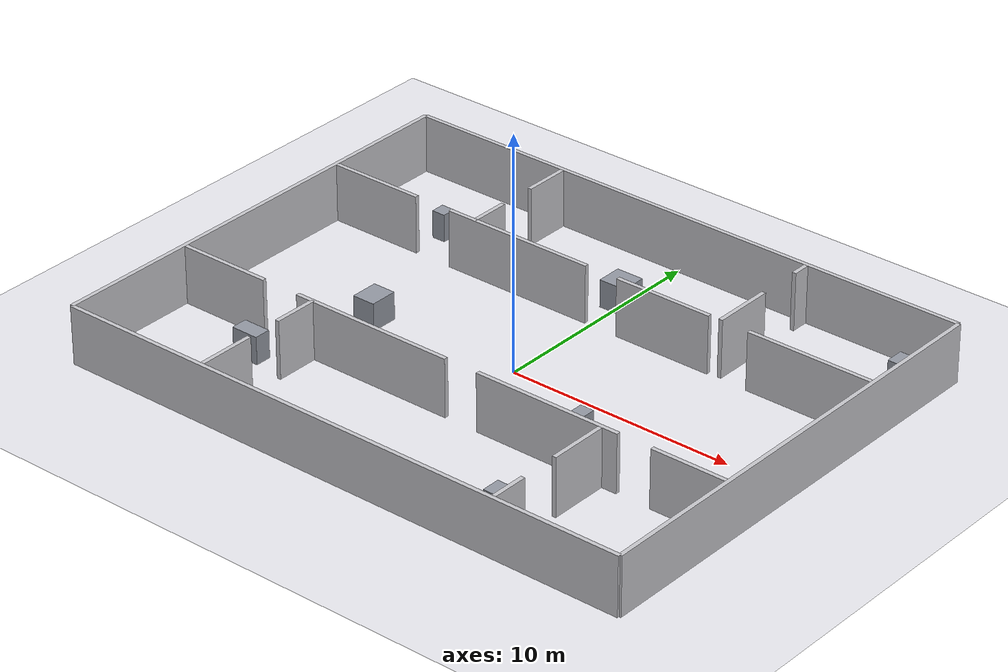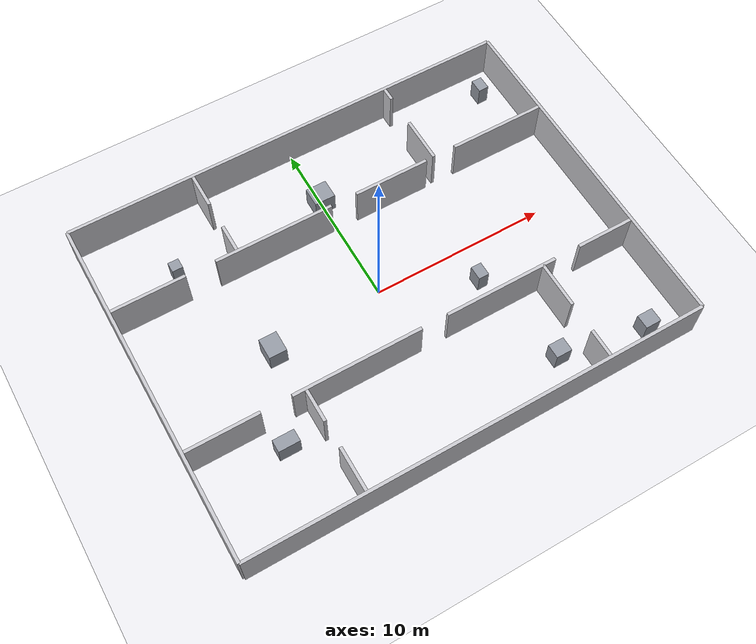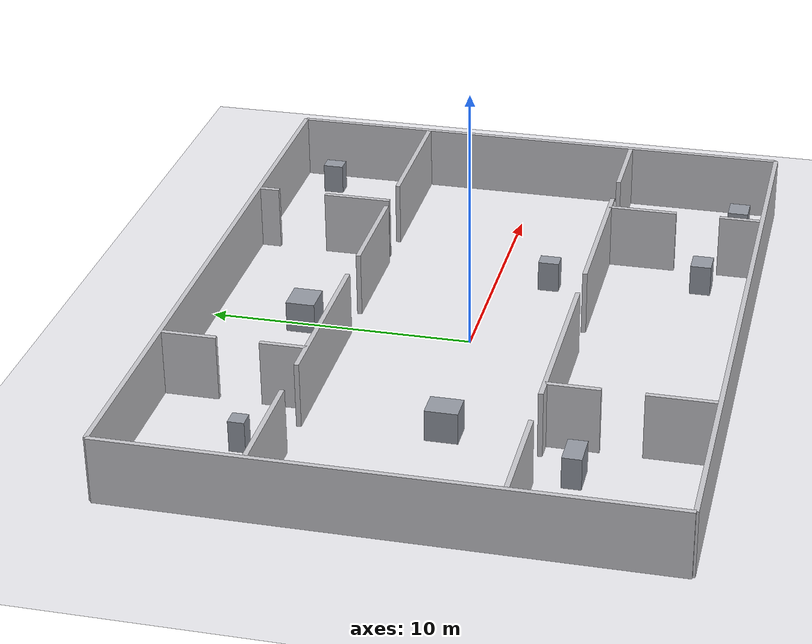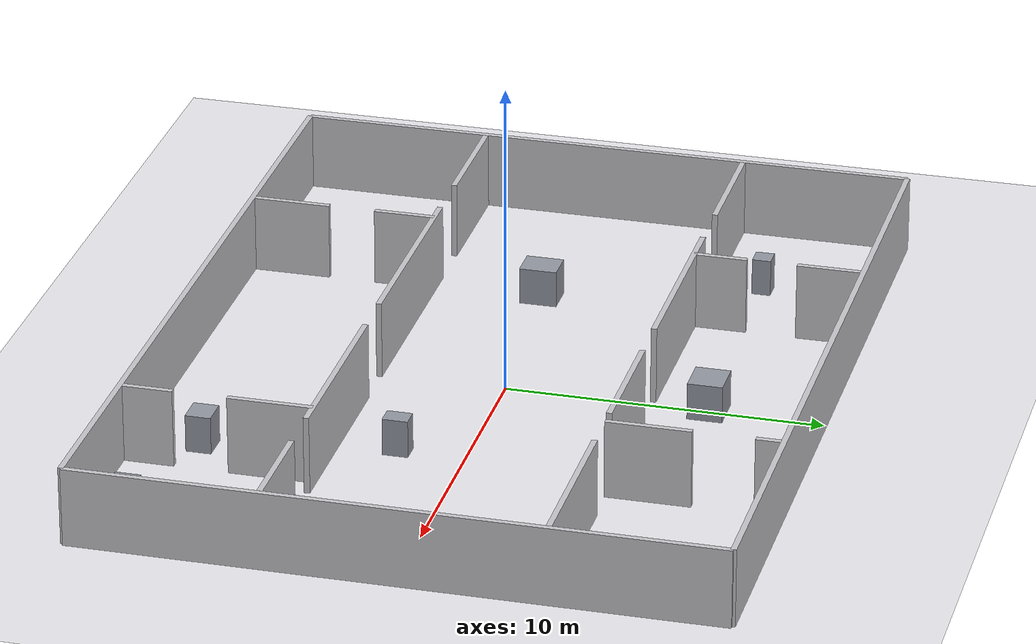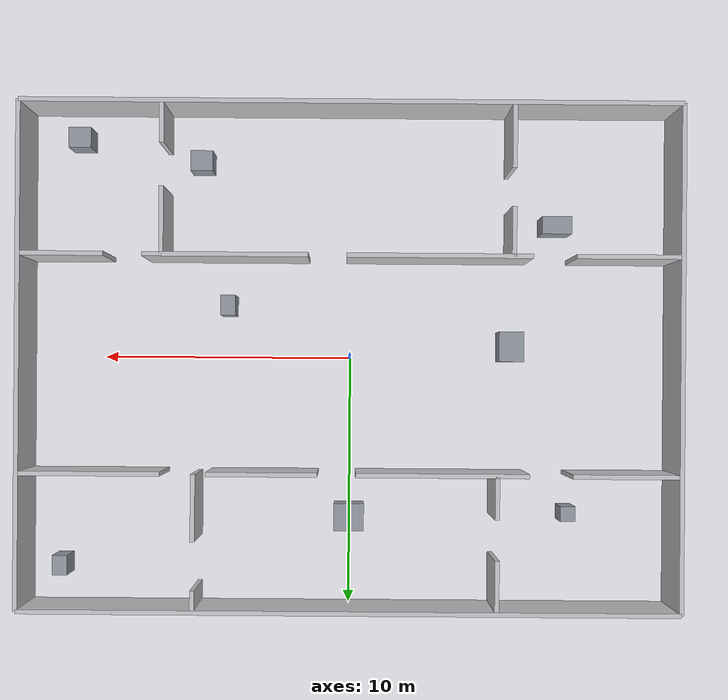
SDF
<?xml version="1.0"?>
<sdf version="1.9"><world name="new_room_world">
<plugin filename="gz-sim-physics-system" name="gz::sim::systems::Physics"/><plugin filename="gz-sim-user-commands-system" name="gz::sim::systems::UserCommands"/><plugin filename="gz-sim-scene-broadcaster-system" name="gz::sim::systems::SceneBroadcaster"/><plugin filename="gz-sim-sensors-system" name="gz::sim::systems::Sensors"><render_engine>ogre2</render_engine></plugin><plugin filename="gz-sim-imu-system" name="gz::sim::systems::Imu"/>
<physics name="new_room_realtime" type="ignored"><max_step_size>0.001</max_step_size><real_time_factor>1</real_time_factor></physics><gravity>0 0 -9.8</gravity><scene><ambient>0.85 0.85 0.87 1</ambient><background>0.68 0.68 0.71 1</background><shadows>false</shadows></scene><light name="sun" type="directional"><cast_shadows>false</cast_shadows><pose>0 0 10 0 0 0</pose><diffuse>0.95 0.95 0.95 1</diffuse><direction>-0.3 0.2 -1</direction></light>
<model name="new_room_ground"><static>true</static><link name="ground_link"><collision name="ground_collision"><geometry><plane><normal>0 0 1</normal><size>40 32</size></plane></geometry></collision><visual name="ground_visual"><geometry><plane><normal>0 0 1</normal><size>40 32</size></plane></geometry><material><ambient>0.92 0.92 0.94 1</ambient><diffuse>0.92 0.92 0.94 1</diffuse></material></visual></link></model>
<model name="mini_hospital_structure"><static>true</static><link name="structure">
<collision name="mx048_c000"><pose>0 10 1.25 0 0 0</pose><geometry><box><size>26 0.18 2.5</size></box></geometry></collision><visual name="mx048_v000"><pose>0 10 1.25 0 0 0</pose><geometry><box><size>26 0.18 2.5</size></box></geometry><material><ambient>0.78 0.78 0.80 1</ambient><diffuse>0.78 0.78 0.80 1</diffuse></material></visual>
<collision name="mx048_c001"><pose>0 -10 1.25 0 0 0</pose><geometry><box><size>26 0.18 2.5</size></box></geometry></collision><visual name="mx048_v001"><pose>0 -10 1.25 0 0 0</pose><geometry><box><size>26 0.18 2.5</size></box></geometry><material><ambient>0.78 0.78 0.80 1</ambient><diffuse>0.78 0.78 0.80 1</diffuse></material></visual>
<collision name="mx048_c002"><pose>-13 0 1.25 0 0 0</pose><geometry><box><size>0.18 20 2.5</size></box></geometry></collision><visual name="mx048_v002"><pose>-13 0 1.25 0 0 0</pose><geometry><box><size>0.18 20 2.5</size></box></geometry><material><ambient>0.78 0.78 0.80 1</ambient><diffuse>0.78 0.78 0.80 1</diffuse></material></visual>
<collision name="mx048_c003"><pose>13 0 1.25 0 0 0</pose><geometry><box><size>0.18 20 2.5</size></box></geometry></collision><visual name="mx048_v003"><pose>13 0 1.25 0 0 0</pose><geometry><box><size>0.18 20 2.5</size></box></geometry><material><ambient>0.78 0.78 0.80 1</ambient><diffuse>0.78 0.78 0.80 1</diffuse></material></visual>
<collision name="mx048_c004"><pose>-10.83 4.6 1.25 0 0 0</pose><geometry><box><size>4.16 0.18 2.5</size></box></geometry></collision><visual name="mx048_v004"><pose>-10.83 4.6 1.25 0 0 0</pose><geometry><box><size>4.16 0.18 2.5</size></box></geometry><material><ambient>0.78 0.78 0.80 1</ambient><diffuse>0.78 0.78 0.80 1</diffuse></material></visual>
<collision name="mx048_c005"><pose>-3.65 4.6 1.25 0 0 0</pose><geometry><box><size>6.8 0.18 2.5</size></box></geometry></collision><visual name="mx048_v005"><pose>-3.65 4.6 1.25 0 0 0</pose><geometry><box><size>6.8 0.18 2.5</size></box></geometry><material><ambient>0.78 0.78 0.80 1</ambient><diffuse>0.78 0.78 0.80 1</diffuse></material></visual>
<collision name="mx048_c006"><pose>3.425 4.6 1.25 0 0 0</pose><geometry><box><size>4.35 0.18 2.5</size></box></geometry></collision><visual name="mx048_v006"><pose>3.425 4.6 1.25 0 0 0</pose><geometry><box><size>4.35 0.18 2.5</size></box></geometry><material><ambient>0.78 0.78 0.80 1</ambient><diffuse>0.78 0.78 0.80 1</diffuse></material></visual>
<collision name="mx048_c007"><pose>10.155 4.6 1.25 0 0 0</pose><geometry><box><size>5.51 0.18 2.5</size></box></geometry></collision><visual name="mx048_v007"><pose>10.155 4.6 1.25 0 0 0</pose><geometry><box><size>5.51 0.18 2.5</size></box></geometry><material><ambient>0.78 0.78 0.80 1</ambient><diffuse>0.78 0.78 0.80 1</diffuse></material></visual>
<collision name="mx048_c008"><pose>-10.88 -4 1.25 0 0 0</pose><geometry><box><size>4.06 0.18 2.5</size></box></geometry></collision><visual name="mx048_v008"><pose>-10.88 -4 1.25 0 0 0</pose><geometry><box><size>4.06 0.18 2.5</size></box></geometry><material><ambient>0.78 0.78 0.80 1</ambient><diffuse>0.78 0.78 0.80 1</diffuse></material></visual>
<collision name="mx048_c009"><pose>-3.5 -4 1.25 0 0 0</pose><geometry><box><size>7.3 0.18 2.5</size></box></geometry></collision><visual name="mx048_v009"><pose>-3.5 -4 1.25 0 0 0</pose><geometry><box><size>7.3 0.18 2.5</size></box></geometry><material><ambient>0.78 0.78 0.80 1</ambient><diffuse>0.78 0.78 0.80 1</diffuse></material></visual>
<collision name="mx048_c010"><pose>4.9 -4 1.25 0 0 0</pose><geometry><box><size>6.5 0.18 2.5</size></box></geometry></collision><visual name="mx048_v010"><pose>4.9 -4 1.25 0 0 0</pose><geometry><box><size>6.5 0.18 2.5</size></box></geometry><material><ambient>0.78 0.78 0.80 1</ambient><diffuse>0.78 0.78 0.80 1</diffuse></material></visual>
<collision name="mx048_c011"><pose>11.28 -4 1.25 0 0 0</pose><geometry><box><size>3.26 0.18 2.5</size></box></geometry></collision><visual name="mx048_v011"><pose>11.28 -4 1.25 0 0 0</pose><geometry><box><size>3.26 0.18 2.5</size></box></geometry><material><ambient>0.78 0.78 0.80 1</ambient><diffuse>0.78 0.78 0.80 1</diffuse></material></visual>
<collision name="mx048_c012"><pose>-5.8 5.45 1.25 0 0 0</pose><geometry><box><size>0.18 1.7 2.5</size></box></geometry></collision><visual name="mx048_v012"><pose>-5.8 5.45 1.25 0 0 0</pose><geometry><box><size>0.18 1.7 2.5</size></box></geometry><material><ambient>0.78 0.78 0.80 1</ambient><diffuse>0.78 0.78 0.80 1</diffuse></material></visual>
<collision name="mx048_c013"><pose>-5.8 8.905 1.25 0 0 0</pose><geometry><box><size>0.18 2.01 2.5</size></box></geometry></collision><visual name="mx048_v013"><pose>-5.8 8.905 1.25 0 0 0</pose><geometry><box><size>0.18 2.01 2.5</size></box></geometry><material><ambient>0.78 0.78 0.80 1</ambient><diffuse>0.78 0.78 0.80 1</diffuse></material></visual>
<collision name="mx048_c014"><pose>6.1 5.925 1.25 0 0 0</pose><geometry><box><size>0.18 2.65 2.5</size></box></geometry></collision><visual name="mx048_v014"><pose>6.1 5.925 1.25 0 0 0</pose><geometry><box><size>0.18 2.65 2.5</size></box></geometry><material><ambient>0.78 0.78 0.80 1</ambient><diffuse>0.78 0.78 0.80 1</diffuse></material></visual>
<collision name="mx048_c015"><pose>6.1 9.53 1.25 0 0 0</pose><geometry><box><size>0.18 0.76 2.5</size></box></geometry></collision><visual name="mx048_v015"><pose>6.1 9.53 1.25 0 0 0</pose><geometry><box><size>0.18 0.76 2.5</size></box></geometry><material><ambient>0.78 0.78 0.80 1</ambient><diffuse>0.78 0.78 0.80 1</diffuse></material></visual>
<collision name="mx048_c016"><pose>-6.4 -8.68 1.25 0 0 0</pose><geometry><box><size>0.18 2.46 2.5</size></box></geometry></collision><visual name="mx048_v016"><pose>-6.4 -8.68 1.25 0 0 0</pose><geometry><box><size>0.18 2.46 2.5</size></box></geometry><material><ambient>0.78 0.78 0.80 1</ambient><diffuse>0.78 0.78 0.80 1</diffuse></material></visual>
<collision name="mx048_c017"><pose>-6.4 -4.975 1.25 0 0 0</pose><geometry><box><size>0.18 1.95 2.5</size></box></geometry></collision><visual name="mx048_v017"><pose>-6.4 -4.975 1.25 0 0 0</pose><geometry><box><size>0.18 1.95 2.5</size></box></geometry><material><ambient>0.78 0.78 0.80 1</ambient><diffuse>0.78 0.78 0.80 1</diffuse></material></visual>
<collision name="mx048_c018"><pose>7.4 -9.13 1.25 0 0 0</pose><geometry><box><size>0.18 1.56 2.5</size></box></geometry></collision><visual name="mx048_v018"><pose>7.4 -9.13 1.25 0 0 0</pose><geometry><box><size>0.18 1.56 2.5</size></box></geometry><material><ambient>0.78 0.78 0.80 1</ambient><diffuse>0.78 0.78 0.80 1</diffuse></material></visual>
<collision name="mx048_c019"><pose>7.4 -5.325 1.25 0 0 0</pose><geometry><box><size>0.18 2.65 2.5</size></box></geometry></collision><visual name="mx048_v019"><pose>7.4 -5.325 1.25 0 0 0</pose><geometry><box><size>0.18 2.65 2.5</size></box></geometry><material><ambient>0.78 0.78 0.80 1</ambient><diffuse>0.78 0.78 0.80 1</diffuse></material></visual>
<collision name="mx048_c020"><pose>-8.8 6.2 0.6 0 0 0</pose><geometry><box><size>0.6 0.6 1.2</size></box></geometry></collision><visual name="mx048_v020"><pose>-8.8 6.2 0.6 0 0 0</pose><geometry><box><size>0.6 0.6 1.2</size></box></geometry><material><ambient>0.58 0.60 0.64 1</ambient><diffuse>0.58 0.60 0.64 1</diffuse></material></visual>
<collision name="mx048_c021"><pose>0 6.4 0.6 0 0 0</pose><geometry><box><size>1.2 1.1 1.2</size></box></geometry></collision><visual name="mx048_v021"><pose>0 6.4 0.6 0 0 0</pose><geometry><box><size>1.2 1.1 1.2</size></box></geometry><material><ambient>0.58 0.60 0.64 1</ambient><diffuse>0.58 0.60 0.64 1</diffuse></material></visual>
<collision name="mx048_c022"><pose>11.6 8.4 0.6 0 0 0</pose><geometry><box><size>0.6 0.8 1.2</size></box></geometry></collision><visual name="mx048_v022"><pose>11.6 8.4 0.6 0 0 0</pose><geometry><box><size>0.6 0.8 1.2</size></box></geometry><material><ambient>0.58 0.60 0.64 1</ambient><diffuse>0.58 0.60 0.64 1</diffuse></material></visual>
<collision name="mx048_c023"><pose>-8.3 -5.4 0.6 0 0 0</pose><geometry><box><size>1.2 0.7 1.2</size></box></geometry></collision><visual name="mx048_v023"><pose>-8.3 -5.4 0.6 0 0 0</pose><geometry><box><size>1.2 0.7 1.2</size></box></geometry><material><ambient>0.58 0.60 0.64 1</ambient><diffuse>0.58 0.60 0.64 1</diffuse></material></visual>
<collision name="mx048_c024"><pose>6 -7.9 0.6 0 0 0</pose><geometry><box><size>0.9 0.8 1.2</size></box></geometry></collision><visual name="mx048_v024"><pose>6 -7.9 0.6 0 0 0</pose><geometry><box><size>0.9 0.8 1.2</size></box></geometry><material><ambient>0.58 0.60 0.64 1</ambient><diffuse>0.58 0.60 0.64 1</diffuse></material></visual>
<collision name="mx048_c025"><pose>10.9 -8.8 0.6 0 0 0</pose><geometry><box><size>0.9 0.8 1.2</size></box></geometry></collision><visual name="mx048_v025"><pose>10.9 -8.8 0.6 0 0 0</pose><geometry><box><size>0.9 0.8 1.2</size></box></geometry><material><ambient>0.58 0.60 0.64 1</ambient><diffuse>0.58 0.60 0.64 1</diffuse></material></visual>
<collision name="mx048_c026"><pose>-6.5 -0.5 0.6 0 0 0</pose><geometry><box><size>1 1.2 1.2</size></box></geometry></collision><visual name="mx048_v026"><pose>-6.5 -0.5 0.6 0 0 0</pose><geometry><box><size>1 1.2 1.2</size></box></geometry><material><ambient>0.58 0.60 0.64 1</ambient><diffuse>0.58 0.60 0.64 1</diffuse></material></visual>
<collision name="mx048_c027"><pose>4.9 -2.1 0.6 0 0 0</pose><geometry><box><size>0.6 0.8 1.2</size></box></geometry></collision><visual name="mx048_v027"><pose>4.9 -2.1 0.6 0 0 0</pose><geometry><box><size>0.6 0.8 1.2</size></box></geometry><material><ambient>0.58 0.60 0.64 1</ambient><diffuse>0.58 0.60 0.64 1</diffuse></material></visual>
</link></model></world></sdf>
